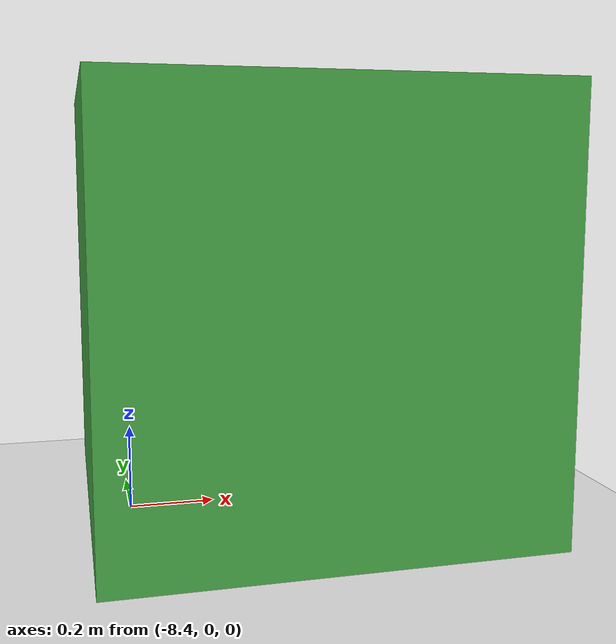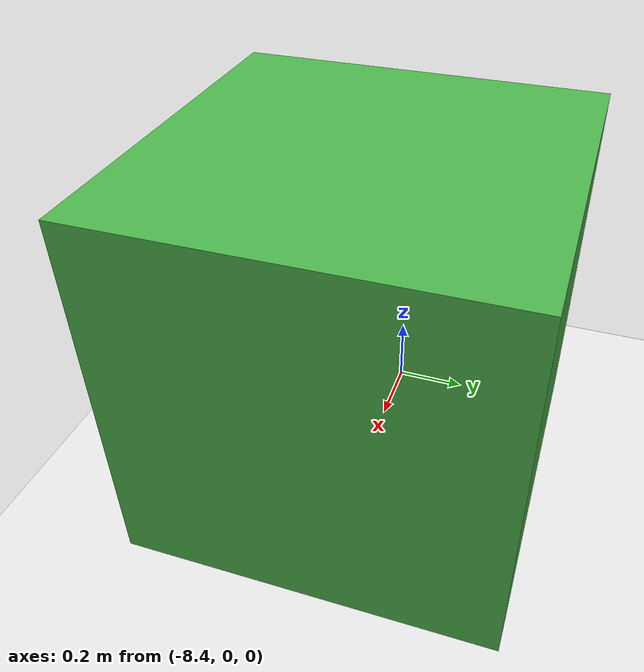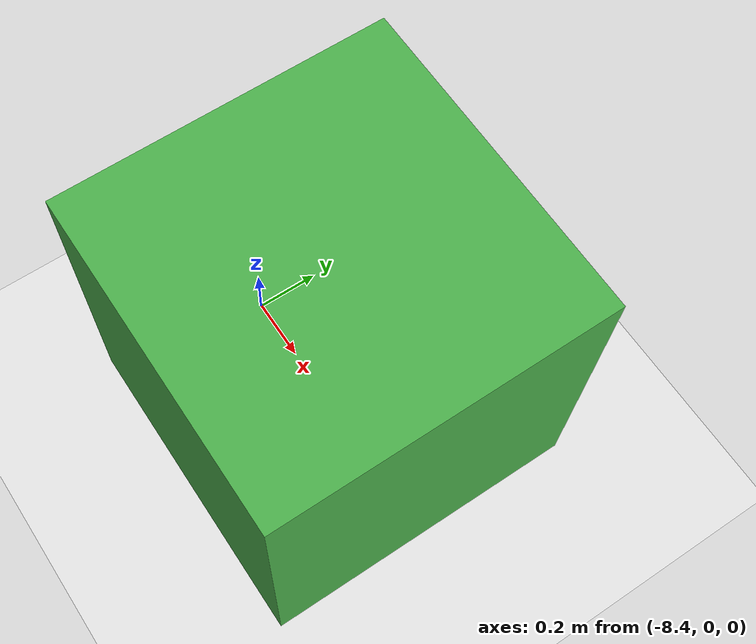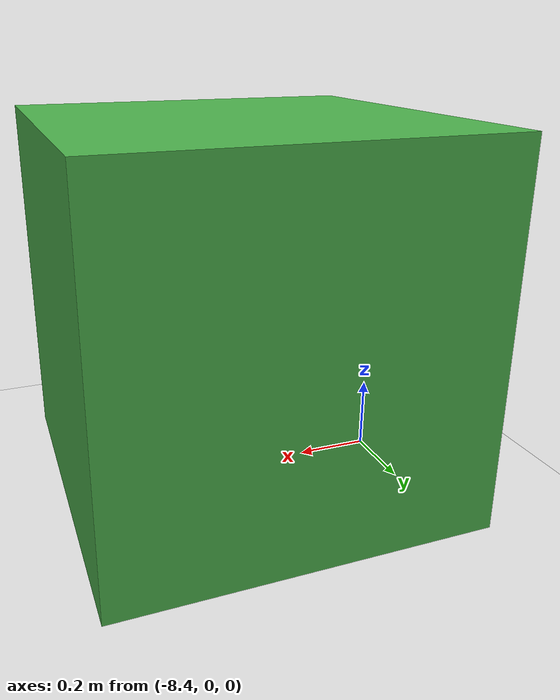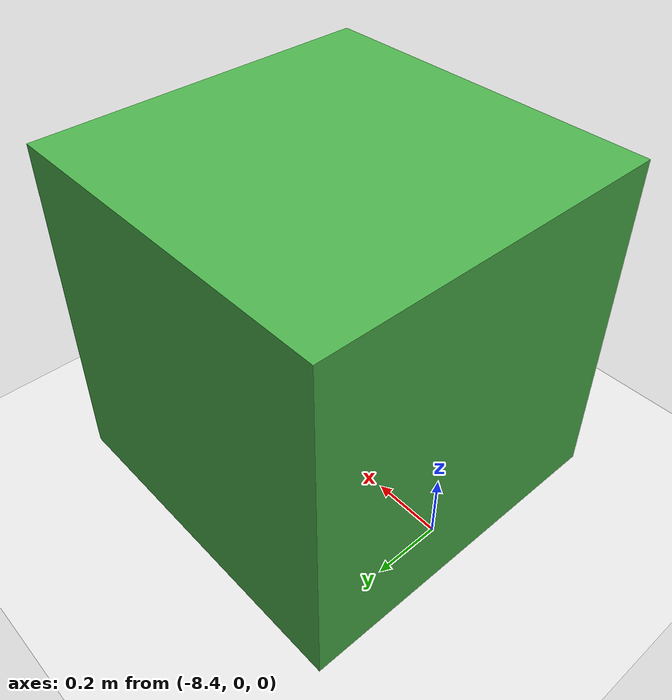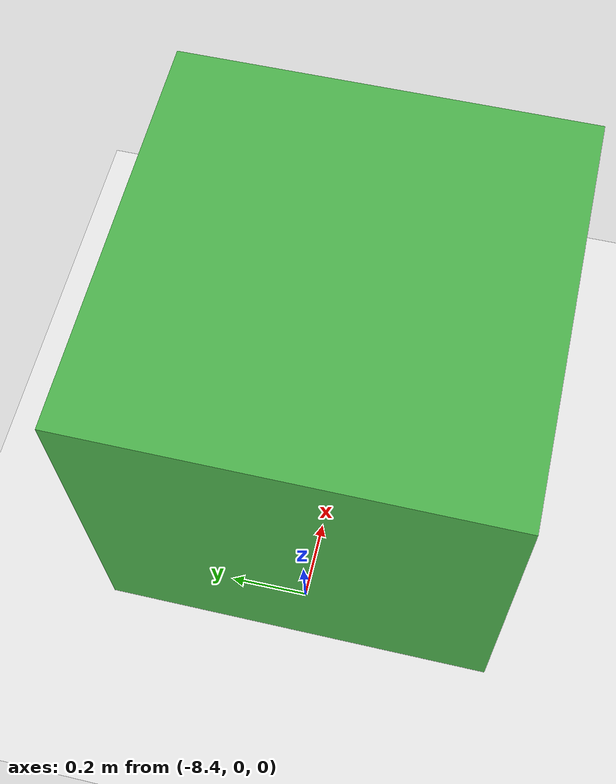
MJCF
<mujoco>
  <option gravity="0 0 -9.81"/>
  <worldbody>
    <body name="mixed_surface" pos="0 0 -0.1">
      <geom type="plane" size="10 20 0.1" pos="-5 0 0" friction="0.2 0.2 0.2" rgba="0.9 0.9 0.9 1"/>
      <geom type="plane" size="10 20 0.1" pos="5 0 0" friction="1 1 1" rgba="0.7 0.7 0.7 1"/>
    </body>
    <body name="block" pos="-8 0 0.5">
      <geom type="box" size="0.5 0.5 0.5" density="1" rgba="0.3 0.7 0.3 1"/>
      <joint type="free"/>
    </body>
  </worldbody>
</mujoco>
